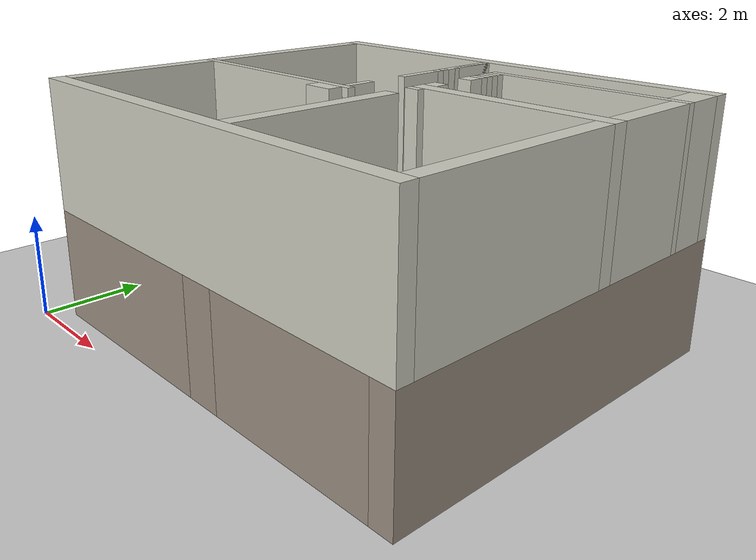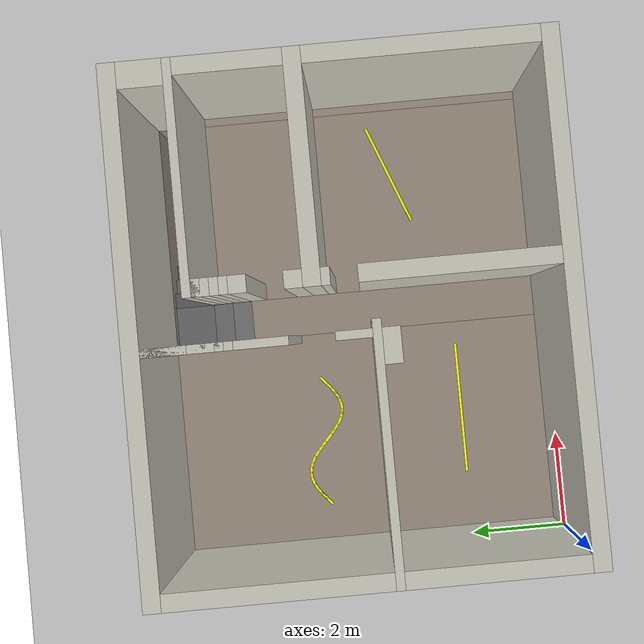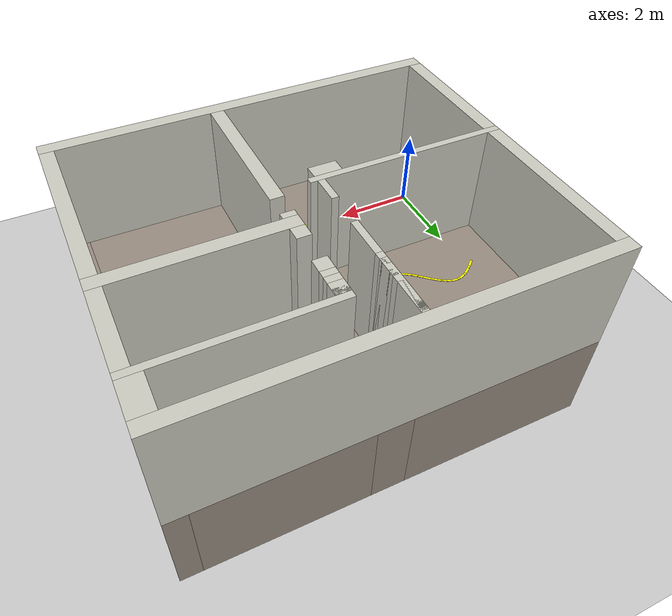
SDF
<sdf version="1.6">
 <world name="casa">
  <include><uri>model://sun</uri></include>
  <include><uri>model://ground_plane</uri></include>
  <physics type="ode">
   <real_time_update_rate>1000.0</real_time_update_rate>
   <max_step_size>0.001</max_step_size>
  </physics>
  <gravity>0 0 -9.8</gravity>
  <model name="pareti_casa">
   <static>true</static>
   <pose>0 0 2.160 0 0 0</pose>
   <link name="link">
    <collision name="w0">
     <pose>4.8750 7.7500 1.250 0 0 0</pose>
     <geometry><box><size>8.8500 0.3000 2.5</size></box></geometry>
    </collision>
    <visual name="w0">
     <pose>4.8750 7.7500 1.250 0 0 0</pose>
     <geometry><box><size>8.8500 0.3000 2.5</size></box></geometry>
     <material><ambient>0.8 0.8 0.75 1</ambient><diffuse>0.8 0.8 0.75 1</diffuse></material>
    </visual>
    <collision name="w10">
     <pose>4.5750 7.2250 1.250 0 0 0</pose>
     <geometry><box><size>0.1500 0.7500 2.5</size></box></geometry>
    </collision>
    <visual name="w10">
     <pose>4.5750 7.2250 1.250 0 0 0</pose>
     <geometry><box><size>0.1500 0.7500 2.5</size></box></geometry>
     <material><ambient>0.8 0.8 0.75 1</ambient><diffuse>0.8 0.8 0.75 1</diffuse></material>
    </visual>
    <collision name="w11">
     <pose>9.0750 7.2250 1.250 0 0 0</pose>
     <geometry><box><size>0.4500 0.7500 2.5</size></box></geometry>
    </collision>
    <visual name="w11">
     <pose>9.0750 7.2250 1.250 0 0 0</pose>
     <geometry><box><size>0.4500 0.7500 2.5</size></box></geometry>
     <material><ambient>0.8 0.8 0.75 1</ambient><diffuse>0.8 0.8 0.75 1</diffuse></material>
    </visual>
    <collision name="w13">
     <pose>4.5750 6.6250 1.250 0 0 0</pose>
     <geometry><box><size>0.1500 0.1500 2.5</size></box></geometry>
    </collision>
    <visual name="w13">
     <pose>4.5750 6.6250 1.250 0 0 0</pose>
     <geometry><box><size>0.1500 0.1500 2.5</size></box></geometry>
     <material><ambient>0.8 0.8 0.75 1</ambient><diffuse>0.8 0.8 0.75 1</diffuse></material>
    </visual>
    <collision name="w14">
     <pose>5.5500 6.6250 1.250 0 0 0</pose>
     <geometry><box><size>0.3000 0.1500 2.5</size></box></geometry>
    </collision>
    <visual name="w14">
     <pose>5.5500 6.6250 1.250 0 0 0</pose>
     <geometry><box><size>0.3000 0.1500 2.5</size></box></geometry>
     <material><ambient>0.8 0.8 0.75 1</ambient><diffuse>0.8 0.8 0.75 1</diffuse></material>
    </visual>
    <collision name="w16">
     <pose>4.5750 6.3250 1.250 0 0 0</pose>
     <geometry><box><size>0.1500 0.1500 2.5</size></box></geometry>
    </collision>
    <visual name="w16">
     <pose>4.5750 6.3250 1.250 0 0 0</pose>
     <geometry><box><size>0.1500 0.1500 2.5</size></box></geometry>
     <material><ambient>0.8 0.8 0.75 1</ambient><diffuse>0.8 0.8 0.75 1</diffuse></material>
    </visual>
    <collision name="w17">
     <pose>5.5500 6.3250 1.250 0 0 0</pose>
     <geometry><box><size>0.3000 0.1500 2.5</size></box></geometry>
    </collision>
    <visual name="w17">
     <pose>5.5500 6.3250 1.250 0 0 0</pose>
     <geometry><box><size>0.3000 0.1500 2.5</size></box></geometry>
     <material><ambient>0.8 0.8 0.75 1</ambient><diffuse>0.8 0.8 0.75 1</diffuse></material>
    </visual>
    <collision name="w19">
     <pose>5.5500 5.9500 1.250 0 0 0</pose>
     <geometry><box><size>0.3000 0.3000 2.5</size></box></geometry>
    </collision>
    <visual name="w19">
     <pose>5.5500 5.9500 1.250 0 0 0</pose>
     <geometry><box><size>0.3000 0.3000 2.5</size></box></geometry>
     <material><ambient>0.8 0.8 0.75 1</ambient><diffuse>0.8 0.8 0.75 1</diffuse></material>
    </visual>
    <collision name="w20">
     <pose>4.5750 5.6500 1.250 0 0 0</pose>
     <geometry><box><size>0.1500 0.9000 2.5</size></box></geometry>
    </collision>
    <visual name="w20">
     <pose>4.5750 5.6500 1.250 0 0 0</pose>
     <geometry><box><size>0.1500 0.9000 2.5</size></box></geometry>
     <material><ambient>0.8 0.8 0.75 1</ambient><diffuse>0.8 0.8 0.75 1</diffuse></material>
    </visual>
    <collision name="w21">
     <pose>9.1500 5.8000 1.250 0 0 0</pose>
     <geometry><box><size>0.3000 1.8000 2.5</size></box></geometry>
    </collision>
    <visual name="w21">
     <pose>9.1500 5.8000 1.250 0 0 0</pose>
     <geometry><box><size>0.3000 1.8000 2.5</size></box></geometry>
     <material><ambient>0.8 0.8 0.75 1</ambient><diffuse>0.8 0.8 0.75 1</diffuse></material>
    </visual>
    <collision name="w22">
     <pose>5.5500 5.0500 1.250 0 0 0</pose>
     <geometry><box><size>0.3000 0.3000 2.5</size></box></geometry>
    </collision>
    <visual name="w22">
     <pose>5.5500 5.0500 1.250 0 0 0</pose>
     <geometry><box><size>0.3000 0.3000 2.5</size></box></geometry>
     <material><ambient>0.8 0.8 0.75 1</ambient><diffuse>0.8 0.8 0.75 1</diffuse></material>
    </visual>
    <collision name="w23">
     <pose>7.3500 4.7500 1.250 0 0 0</pose>
     <geometry><box><size>3.9000 0.3000 2.5</size></box></geometry>
    </collision>
    <visual name="w23">
     <pose>7.3500 4.7500 1.250 0 0 0</pose>
     <geometry><box><size>3.9000 0.3000 2.5</size></box></geometry>
     <material><ambient>0.8 0.8 0.75 1</ambient><diffuse>0.8 0.8 0.75 1</diffuse></material>
    </visual>
    <collision name="w24">
     <pose>5.5500 4.5250 1.250 0 0 0</pose>
     <geometry><box><size>0.3000 0.1500 2.5</size></box></geometry>
    </collision>
    <visual name="w24">
     <pose>5.5500 4.5250 1.250 0 0 0</pose>
     <geometry><box><size>0.3000 0.1500 2.5</size></box></geometry>
     <material><ambient>0.8 0.8 0.75 1</ambient><diffuse>0.8 0.8 0.75 1</diffuse></material>
    </visual>
    <collision name="w25">
     <pose>0.6000 5.7250 1.250 0 0 0</pose>
     <geometry><box><size>0.3000 3.7500 2.5</size></box></geometry>
    </collision>
    <visual name="w25">
     <pose>0.6000 5.7250 1.250 0 0 0</pose>
     <geometry><box><size>0.3000 3.7500 2.5</size></box></geometry>
     <material><ambient>0.8 0.8 0.75 1</ambient><diffuse>0.8 0.8 0.75 1</diffuse></material>
    </visual>
    <collision name="w26">
     <pose>4.5750 4.1500 1.250 0 0 0</pose>
     <geometry><box><size>0.1500 0.6000 2.5</size></box></geometry>
    </collision>
    <visual name="w26">
     <pose>4.5750 4.1500 1.250 0 0 0</pose>
     <geometry><box><size>0.1500 0.6000 2.5</size></box></geometry>
     <material><ambient>0.8 0.8 0.75 1</ambient><diffuse>0.8 0.8 0.75 1</diffuse></material>
    </visual>
    <collision name="w27">
     <pose>2.6250 3.7750 1.250 0 0 0</pose>
     <geometry><box><size>4.3500 0.1500 2.5</size></box></geometry>
    </collision>
    <visual name="w27">
     <pose>2.6250 3.7750 1.250 0 0 0</pose>
     <geometry><box><size>4.3500 0.1500 2.5</size></box></geometry>
     <material><ambient>0.8 0.8 0.75 1</ambient><diffuse>0.8 0.8 0.75 1</diffuse></material>
    </visual>
    <collision name="w28">
     <pose>4.3500 3.5500 1.250 0 0 0</pose>
     <geometry><box><size>0.6000 0.3000 2.5</size></box></geometry>
    </collision>
    <visual name="w28">
     <pose>4.3500 3.5500 1.250 0 0 0</pose>
     <geometry><box><size>0.6000 0.3000 2.5</size></box></geometry>
     <material><ambient>0.8 0.8 0.75 1</ambient><diffuse>0.8 0.8 0.75 1</diffuse></material>
    </visual>
    <collision name="w29">
     <pose>9.1500 2.6500 1.250 0 0 0</pose>
     <geometry><box><size>0.3000 3.9000 2.5</size></box></geometry>
    </collision>
    <visual name="w29">
     <pose>9.1500 2.6500 1.250 0 0 0</pose>
     <geometry><box><size>0.3000 3.9000 2.5</size></box></geometry>
     <material><ambient>0.8 0.8 0.75 1</ambient><diffuse>0.8 0.8 0.75 1</diffuse></material>
    </visual>
    <collision name="w30">
     <pose>5.5500 2.3500 1.250 0 0 0</pose>
     <geometry><box><size>0.3000 3.3000 2.5</size></box></geometry>
    </collision>
    <visual name="w30">
     <pose>5.5500 2.3500 1.250 0 0 0</pose>
     <geometry><box><size>0.3000 3.3000 2.5</size></box></geometry>
     <material><ambient>0.8 0.8 0.75 1</ambient><diffuse>0.8 0.8 0.75 1</diffuse></material>
    </visual>
    <collision name="w31">
     <pose>0.6000 2.2000 1.250 0 0 0</pose>
     <geometry><box><size>0.3000 3.0000 2.5</size></box></geometry>
    </collision>
    <visual name="w31">
     <pose>0.6000 2.2000 1.250 0 0 0</pose>
     <geometry><box><size>0.3000 3.0000 2.5</size></box></geometry>
     <material><ambient>0.8 0.8 0.75 1</ambient><diffuse>0.8 0.8 0.75 1</diffuse></material>
    </visual>
    <collision name="w32">
     <pose>4.8750 0.5500 1.250 0 0 0</pose>
     <geometry><box><size>8.8500 0.3000 2.5</size></box></geometry>
    </collision>
    <visual name="w32">
     <pose>4.8750 0.5500 1.250 0 0 0</pose>
     <geometry><box><size>8.8500 0.3000 2.5</size></box></geometry>
     <material><ambient>0.8 0.8 0.75 1</ambient><diffuse>0.8 0.8 0.75 1</diffuse></material>
    </visual>
   </link>
  </model>
  <model name="scale_piano">
   <static>true</static>
   <link name="link">
    <collision name="c_lastra_sx_a">
     <pose>2.5500 4.1500 1.0800 0 0 0</pose>
     <geometry><box><size>4.2000 7.5000 2.1600</size></box></geometry>
    </collision>
    <visual name="v_lastra_sx_a">
     <pose>2.5500 4.1500 1.0800 0 0 0</pose>
     <geometry><box><size>4.2000 7.5000 2.1600</size></box></geometry>
     <material><ambient>0.6 0.55 0.5 1</ambient><diffuse>0.6 0.55 0.5 1</diffuse></material>
    </visual>
    <collision name="c_lastra_sx_b">
     <pose>5.0250 3.2500 1.0800 0 0 0</pose>
     <geometry><box><size>0.7500 5.7000 2.1600</size></box></geometry>
    </collision>
    <visual name="v_lastra_sx_b">
     <pose>5.0250 3.2500 1.0800 0 0 0</pose>
     <geometry><box><size>0.7500 5.7000 2.1600</size></box></geometry>
     <material><ambient>0.6 0.55 0.5 1</ambient><diffuse>0.6 0.55 0.5 1</diffuse></material>
    </visual>
    <collision name="c_lastra_sx_c">
     <pose>5.0250 7.7500 1.0800 0 0 0</pose>
     <geometry><box><size>0.7500 0.3000 2.1600</size></box></geometry>
    </collision>
    <visual name="v_lastra_sx_c">
     <pose>5.0250 7.7500 1.0800 0 0 0</pose>
     <geometry><box><size>0.7500 0.3000 2.1600</size></box></geometry>
     <material><ambient>0.6 0.55 0.5 1</ambient><diffuse>0.6 0.55 0.5 1</diffuse></material>
    </visual>
    <collision name="c_lastra_dx">
     <pose>9.0750 4.1500 1.0800 0 0 0</pose>
     <geometry><box><size>0.4500 7.5000 2.1600</size></box></geometry>
    </collision>
    <visual name="v_lastra_dx">
     <pose>9.0750 4.1500 1.0800 0 0 0</pose>
     <geometry><box><size>0.4500 7.5000 2.1600</size></box></geometry>
     <material><ambient>0.6 0.55 0.5 1</ambient><diffuse>0.6 0.55 0.5 1</diffuse></material>
    </visual>
    <collision name="c_lastra_sotto">
     <pose>7.1250 3.6250 1.0800 0 0 0</pose>
     <geometry><box><size>3.4500 6.4500 2.1600</size></box></geometry>
    </collision>
    <visual name="v_lastra_sotto">
     <pose>7.1250 3.6250 1.0800 0 0 0</pose>
     <geometry><box><size>3.4500 6.4500 2.1600</size></box></geometry>
     <material><ambient>0.6 0.55 0.5 1</ambient><diffuse>0.6 0.55 0.5 1</diffuse></material>
    </visual>
    <collision name="c_lastra_sopra">
     <pose>7.1250 7.7500 1.0800 0 0 0</pose>
     <geometry><box><size>3.4500 0.3000 2.1600</size></box></geometry>
    </collision>
    <visual name="v_lastra_sopra">
     <pose>7.1250 7.7500 1.0800 0 0 0</pose>
     <geometry><box><size>3.4500 0.3000 2.1600</size></box></geometry>
     <material><ambient>0.6 0.55 0.5 1</ambient><diffuse>0.6 0.55 0.5 1</diffuse></material>
    </visual>
    <visual name="v_quadrato">
     <pose>5.0250 7.2250 0.9900 0 0 0</pose>
     <geometry><box><size>0.7500 0.7500 1.9800</size></box></geometry>
     <material><ambient>0.40 0.40 0.40 1</ambient><diffuse>0.40 0.40 0.40 1</diffuse></material>
    </visual>
    <visual name="v_scalino_1">
     <pose>5.0250 6.6625 1.0200 0 0 0</pose>
     <geometry><box><size>0.7500 0.3750 2.0400</size></box></geometry>
     <material><ambient>0.42 0.42 0.42 1</ambient><diffuse>0.42 0.42 0.42 1</diffuse></material>
    </visual>
    <visual name="v_scalino_2">
     <pose>5.0250 6.2875 1.0500 0 0 0</pose>
     <geometry><box><size>0.7500 0.3750 2.1000</size></box></geometry>
     <material><ambient>0.45 0.45 0.45 1</ambient><diffuse>0.45 0.45 0.45 1</diffuse></material>
    </visual>
    <visual name="v_g0">
     <pose>5.5438 7.2250 0.9900 0 0 0</pose>
     <geometry><box><size>0.2875 0.7500 1.9800</size></box></geometry>
     <material><ambient>0.35 0.35 0.35 1</ambient><diffuse>0.35 0.35 0.35 1</diffuse></material>
    </visual>
    <visual name="v_g1">
     <pose>5.8313 7.2250 0.9000 0 0 0</pose>
     <geometry><box><size>0.2875 0.7500 1.8000</size></box></geometry>
     <material><ambient>0.39 0.39 0.39 1</ambient><diffuse>0.39 0.39 0.39 1</diffuse></material>
    </visual>
    <visual name="v_g2">
     <pose>6.1188 7.2250 0.8100 0 0 0</pose>
     <geometry><box><size>0.2875 0.7500 1.6200</size></box></geometry>
     <material><ambient>0.35 0.35 0.35 1</ambient><diffuse>0.35 0.35 0.35 1</diffuse></material>
    </visual>
    <visual name="v_g3">
     <pose>6.4062 7.2250 0.7200 0 0 0</pose>
     <geometry><box><size>0.2875 0.7500 1.4400</size></box></geometry>
     <material><ambient>0.39 0.39 0.39 1</ambient><diffuse>0.39 0.39 0.39 1</diffuse></material>
    </visual>
    <visual name="v_g4">
     <pose>6.6937 7.2250 0.6300 0 0 0</pose>
     <geometry><box><size>0.2875 0.7500 1.2600</size></box></geometry>
     <material><ambient>0.35 0.35 0.35 1</ambient><diffuse>0.35 0.35 0.35 1</diffuse></material>
    </visual>
    <visual name="v_g5">
     <pose>6.9813 7.2250 0.5400 0 0 0</pose>
     <geometry><box><size>0.2875 0.7500 1.0800</size></box></geometry>
     <material><ambient>0.39 0.39 0.39 1</ambient><diffuse>0.39 0.39 0.39 1</diffuse></material>
    </visual>
    <visual name="v_g6">
     <pose>7.2687 7.2250 0.4500 0 0 0</pose>
     <geometry><box><size>0.2875 0.7500 0.9000</size></box></geometry>
     <material><ambient>0.35 0.35 0.35 1</ambient><diffuse>0.35 0.35 0.35 1</diffuse></material>
    </visual>
    <visual name="v_g7">
     <pose>7.5562 7.2250 0.3600 0 0 0</pose>
     <geometry><box><size>0.2875 0.7500 0.7200</size></box></geometry>
     <material><ambient>0.39 0.39 0.39 1</ambient><diffuse>0.39 0.39 0.39 1</diffuse></material>
    </visual>
    <visual name="v_g8">
     <pose>7.8438 7.2250 0.2700 0 0 0</pose>
     <geometry><box><size>0.2875 0.7500 0.5400</size></box></geometry>
     <material><ambient>0.35 0.35 0.35 1</ambient><diffuse>0.35 0.35 0.35 1</diffuse></material>
    </visual>
    <visual name="v_g9">
     <pose>8.1312 7.2250 0.1800 0 0 0</pose>
     <geometry><box><size>0.2875 0.7500 0.3600</size></box></geometry>
     <material><ambient>0.39 0.39 0.39 1</ambient><diffuse>0.39 0.39 0.39 1</diffuse></material>
    </visual>
    <visual name="v_g10">
     <pose>8.4187 7.2250 0.0900 0 0 0</pose>
     <geometry><box><size>0.2875 0.7500 0.1800</size></box></geometry>
     <material><ambient>0.35 0.35 0.35 1</ambient><diffuse>0.35 0.35 0.35 1</diffuse></material>
    </visual>
    <collision name="c_parapetto">
     <pose>7.1250 7.2250 2.4600 0 0 0</pose>
     <geometry><box><size>3.4500 0.7500 0.6000</size></box></geometry>
    </collision>
    <collision name="c_parapetto_q">
     <pose>5.0250 6.8500 2.4600 0 0 0</pose>
     <geometry><box><size>0.7500 1.5000 0.6000</size></box></geometry>
    </collision>
    <collision name="c_muro_sx">
     <pose>4.5750 6.8500 3.4100 0 0 0</pose>
     <geometry><box><size>0.1500 1.5000 2.5000</size></box></geometry>
    </collision>
    <visual name="v_muro_sx">
     <pose>4.5750 6.8500 3.4100 0 0 0</pose>
     <geometry><box><size>0.1500 1.5000 2.5000</size></box></geometry>
     <material><ambient>0.8 0.8 0.75 1</ambient><diffuse>0.8 0.8 0.75 1</diffuse></material>
    </visual>
    <collision name="c_muro_dx">
     <pose>5.5500 6.4000 3.4100 0 0 0</pose>
     <geometry><box><size>0.3000 0.6000 2.5000</size></box></geometry>
    </collision>
    <visual name="v_muro_dx">
     <pose>5.5500 6.4000 3.4100 0 0 0</pose>
     <geometry><box><size>0.3000 0.6000 2.5000</size></box></geometry>
     <material><ambient>0.8 0.8 0.75 1</ambient><diffuse>0.8 0.8 0.75 1</diffuse></material>
    </visual>
    <collision name="c_w12_resto">
     <pose>7.3500 6.7750 3.4100 0 0 0</pose>
     <geometry><box><size>3.9000 0.1500 2.5000</size></box></geometry>
    </collision>
    <visual name="v_w12_resto">
     <pose>7.3500 6.7750 3.4100 0 0 0</pose>
     <geometry><box><size>3.9000 0.1500 2.5000</size></box></geometry>
     <material><ambient>0.8 0.8 0.75 1</ambient><diffuse>0.8 0.8 0.75 1</diffuse></material>
    </visual>
    <collision name="c_p_w12_sx">
     <pose>4.7250 6.7750 2.4600 0 0 0</pose>
     <geometry><box><size>0.1500 0.1500 0.6000</size></box></geometry>
    </collision>
   </link>
  </model>
  <model name="linea_gialla_1">
   <static>true</static>
   <link name="link">
    <visual name="v0">
     <pose>3.0000 2.2700 2.1620 0 0 0.0000</pose>
     <geometry><box><size>2.4500 0.0500 0.004</size></box></geometry>
     <material><ambient>1 1 0 1</ambient><diffuse>1 1 0 1</diffuse><emissive>1 1 0 1</emissive></material>
    </visual>
   </link>
  </model>
  <model name="linea_gialla_2">
   <static>true</static>
   <link name="link">
    <visual name="v0">
     <pose>7.6000 3.2500 2.1620 0 0 0.3709</pose>
     <geometry><box><size>1.9813 0.0500 0.004</size></box></geometry>
     <material><ambient>1 1 0 1</ambient><diffuse>1 1 0 1</diffuse><emissive>1 1 0 1</emissive></material>
    </visual>
   </link>
  </model>
  <model name="linea_gialla_3">
   <static>true</static>
   <link name="link">
    <visual name="v0">
     <pose>1.4500 4.9453 2.1620 0 0 0.7360</pose>
     <geometry><box><size>0.1849 0.0500 0.004</size></box></geometry>
     <material><ambient>1 1 0 1</ambient><diffuse>1 1 0 1</diffuse><emissive>1 1 0 1</emissive></material>
    </visual>
    <visual name="v1">
     <pose>1.5500 5.0328 2.1620 0 0 0.7011</pose>
     <geometry><box><size>0.1809 0.0500 0.004</size></box></geometry>
     <material><ambient>1 1 0 1</ambient><diffuse>1 1 0 1</diffuse><emissive>1 1 0 1</emissive></material>
    </visual>
    <visual name="v2">
     <pose>1.6500 5.1112 2.1620 0 0 0.6272</pose>
     <geometry><box><size>0.1735 0.0500 0.004</size></box></geometry>
     <material><ambient>1 1 0 1</ambient><diffuse>1 1 0 1</diffuse><emissive>1 1 0 1</emissive></material>
    </visual>
    <visual name="v3">
     <pose>1.7500 5.1753 2.1620 0 0 0.5076</pose>
     <geometry><box><size>0.1644 0.0500 0.004</size></box></geometry>
     <material><ambient>1 1 0 1</ambient><diffuse>1 1 0 1</diffuse><emissive>1 1 0 1</emissive></material>
    </visual>
    <visual name="v4">
     <pose>1.8500 5.2206 2.1620 0 0 0.3364</pose>
     <geometry><box><size>0.1559 0.0500 0.004</size></box></geometry>
     <material><ambient>1 1 0 1</ambient><diffuse>1 1 0 1</diffuse><emissive>1 1 0 1</emissive></material>
    </visual>
    <visual name="v5">
     <pose>1.9500 5.2440 2.1620 0 0 0.1187</pose>
     <geometry><box><size>0.1507 0.0500 0.004</size></box></geometry>
     <material><ambient>1 1 0 1</ambient><diffuse>1 1 0 1</diffuse><emissive>1 1 0 1</emissive></material>
    </visual>
    <visual name="v6">
     <pose>2.0500 5.2440 2.1620 0 0 -0.1187</pose>
     <geometry><box><size>0.1507 0.0500 0.004</size></box></geometry>
     <material><ambient>1 1 0 1</ambient><diffuse>1 1 0 1</diffuse><emissive>1 1 0 1</emissive></material>
    </visual>
    <visual name="v7">
     <pose>2.1500 5.2206 2.1620 0 0 -0.3364</pose>
     <geometry><box><size>0.1559 0.0500 0.004</size></box></geometry>
     <material><ambient>1 1 0 1</ambient><diffuse>1 1 0 1</diffuse><emissive>1 1 0 1</emissive></material>
    </visual>
    <visual name="v8">
     <pose>2.2500 5.1753 2.1620 0 0 -0.5076</pose>
     <geometry><box><size>0.1644 0.0500 0.004</size></box></geometry>
     <material><ambient>1 1 0 1</ambient><diffuse>1 1 0 1</diffuse><emissive>1 1 0 1</emissive></material>
    </visual>
    <visual name="v9">
     <pose>2.3500 5.1112 2.1620 0 0 -0.6272</pose>
     <geometry><box><size>0.1735 0.0500 0.004</size></box></geometry>
     <material><ambient>1 1 0 1</ambient><diffuse>1 1 0 1</diffuse><emissive>1 1 0 1</emissive></material>
    </visual>
    <visual name="v10">
     <pose>2.4500 5.0328 2.1620 0 0 -0.7011</pose>
     <geometry><box><size>0.1809 0.0500 0.004</size></box></geometry>
     <material><ambient>1 1 0 1</ambient><diffuse>1 1 0 1</diffuse><emissive>1 1 0 1</emissive></material>
    </visual>
    <visual name="v11">
     <pose>2.5500 4.9453 2.1620 0 0 -0.7360</pose>
     <geometry><box><size>0.1849 0.0500 0.004</size></box></geometry>
     <material><ambient>1 1 0 1</ambient><diffuse>1 1 0 1</diffuse><emissive>1 1 0 1</emissive></material>
    </visual>
    <visual name="v12">
     <pose>2.6500 4.8547 2.1620 0 0 -0.7360</pose>
     <geometry><box><size>0.1849 0.0500 0.004</size></box></geometry>
     <material><ambient>1 1 0 1</ambient><diffuse>1 1 0 1</diffuse><emissive>1 1 0 1</emissive></material>
    </visual>
    <visual name="v13">
     <pose>2.7500 4.7672 2.1620 0 0 -0.7011</pose>
     <geometry><box><size>0.1809 0.0500 0.004</size></box></geometry>
     <material><ambient>1 1 0 1</ambient><diffuse>1 1 0 1</diffuse><emissive>1 1 0 1</emissive></material>
    </visual>
    <visual name="v14">
     <pose>2.8500 4.6888 2.1620 0 0 -0.6272</pose>
     <geometry><box><size>0.1735 0.0500 0.004</size></box></geometry>
     <material><ambient>1 1 0 1</ambient><diffuse>1 1 0 1</diffuse><emissive>1 1 0 1</emissive></material>
    </visual>
    <visual name="v15">
     <pose>2.9500 4.6247 2.1620 0 0 -0.5076</pose>
     <geometry><box><size>0.1644 0.0500 0.004</size></box></geometry>
     <material><ambient>1 1 0 1</ambient><diffuse>1 1 0 1</diffuse><emissive>1 1 0 1</emissive></material>
    </visual>
    <visual name="v16">
     <pose>3.0500 4.5794 2.1620 0 0 -0.3364</pose>
     <geometry><box><size>0.1559 0.0500 0.004</size></box></geometry>
     <material><ambient>1 1 0 1</ambient><diffuse>1 1 0 1</diffuse><emissive>1 1 0 1</emissive></material>
    </visual>
    <visual name="v17">
     <pose>3.1500 4.5560 2.1620 0 0 -0.1187</pose>
     <geometry><box><size>0.1507 0.0500 0.004</size></box></geometry>
     <material><ambient>1 1 0 1</ambient><diffuse>1 1 0 1</diffuse><emissive>1 1 0 1</emissive></material>
    </visual>
    <visual name="v18">
     <pose>3.2500 4.5560 2.1620 0 0 0.1187</pose>
     <geometry><box><size>0.1507 0.0500 0.004</size></box></geometry>
     <material><ambient>1 1 0 1</ambient><diffuse>1 1 0 1</diffuse><emissive>1 1 0 1</emissive></material>
    </visual>
    <visual name="v19">
     <pose>3.3500 4.5794 2.1620 0 0 0.3364</pose>
     <geometry><box><size>0.1559 0.0500 0.004</size></box></geometry>
     <material><ambient>1 1 0 1</ambient><diffuse>1 1 0 1</diffuse><emissive>1 1 0 1</emissive></material>
    </visual>
    <visual name="v20">
     <pose>3.4500 4.6247 2.1620 0 0 0.5076</pose>
     <geometry><box><size>0.1644 0.0500 0.004</size></box></geometry>
     <material><ambient>1 1 0 1</ambient><diffuse>1 1 0 1</diffuse><emissive>1 1 0 1</emissive></material>
    </visual>
    <visual name="v21">
     <pose>3.5500 4.6888 2.1620 0 0 0.6272</pose>
     <geometry><box><size>0.1735 0.0500 0.004</size></box></geometry>
     <material><ambient>1 1 0 1</ambient><diffuse>1 1 0 1</diffuse><emissive>1 1 0 1</emissive></material>
    </visual>
    <visual name="v22">
     <pose>3.6500 4.7672 2.1620 0 0 0.7011</pose>
     <geometry><box><size>0.1809 0.0500 0.004</size></box></geometry>
     <material><ambient>1 1 0 1</ambient><diffuse>1 1 0 1</diffuse><emissive>1 1 0 1</emissive></material>
    </visual>
    <visual name="v23">
     <pose>3.7500 4.8547 2.1620 0 0 0.7360</pose>
     <geometry><box><size>0.1849 0.0500 0.004</size></box></geometry>
     <material><ambient>1 1 0 1</ambient><diffuse>1 1 0 1</diffuse><emissive>1 1 0 1</emissive></material>
    </visual>
   </link>
  </model>
 </world>
</sdf>
